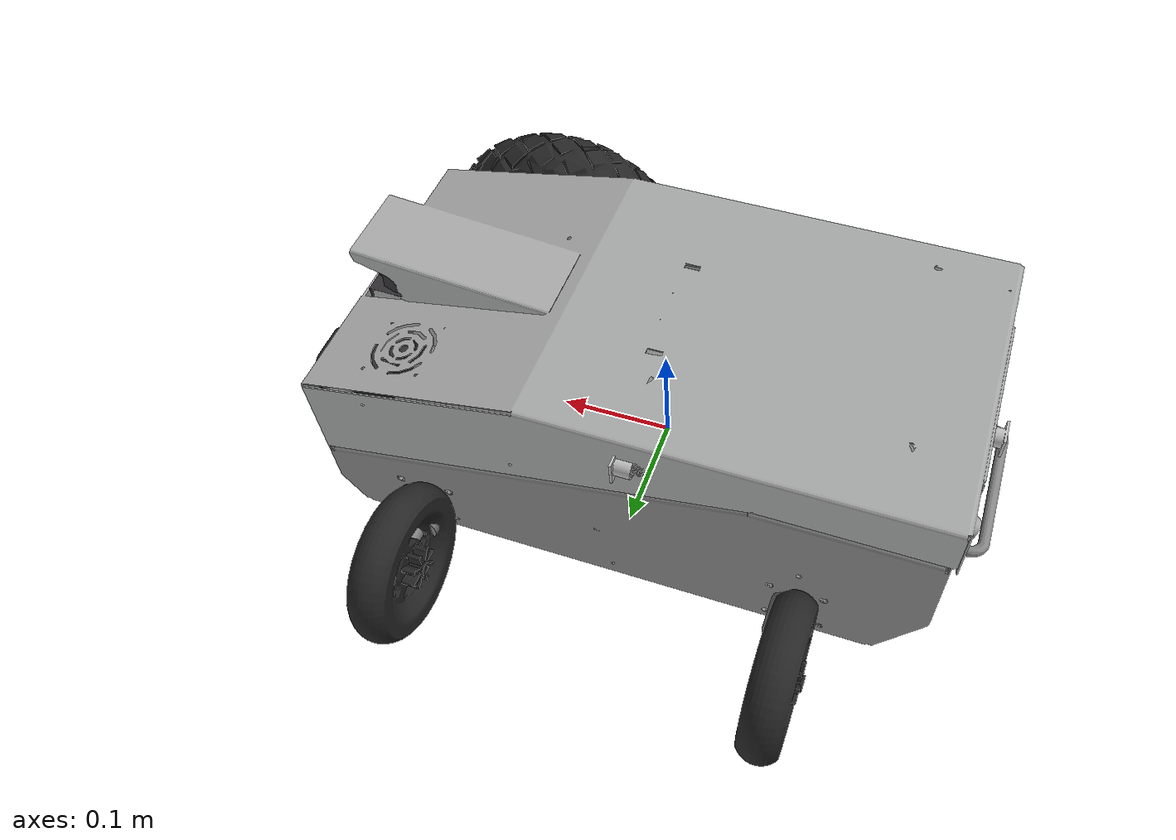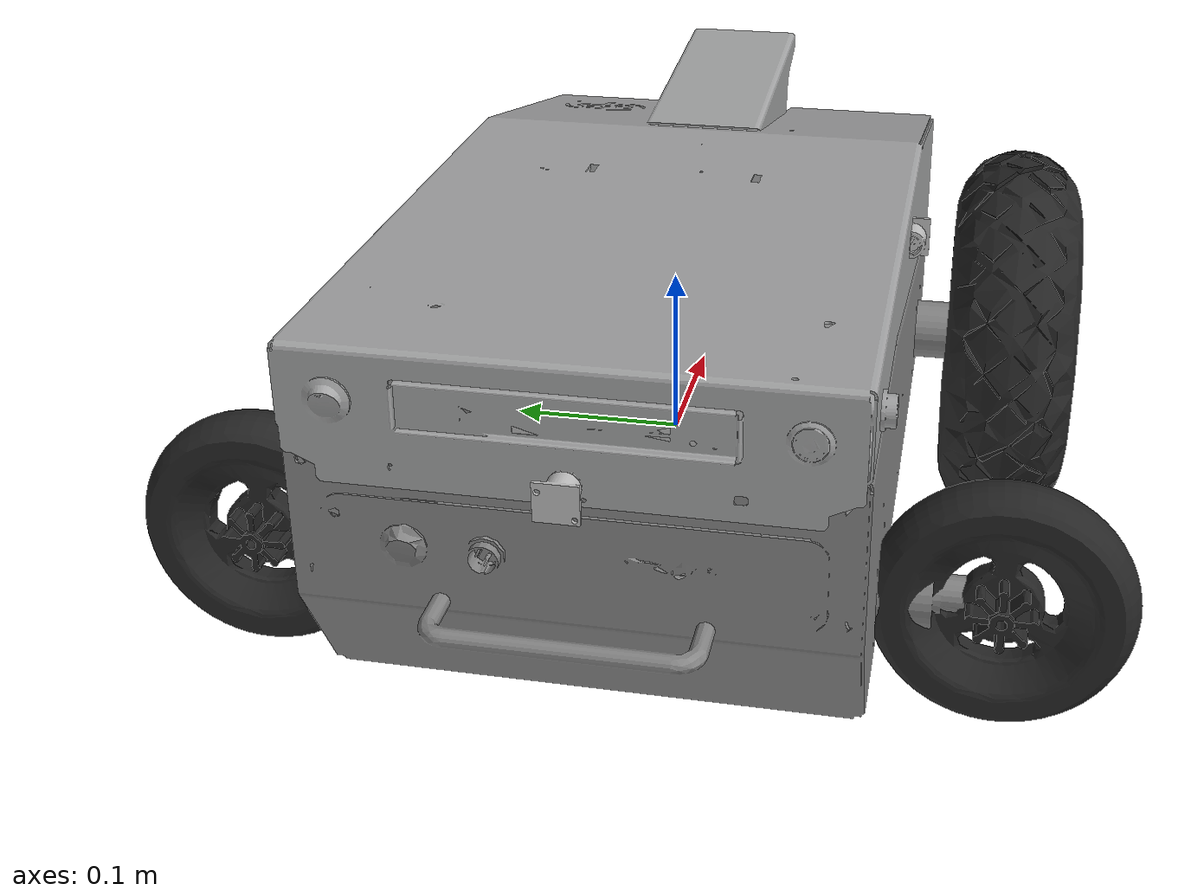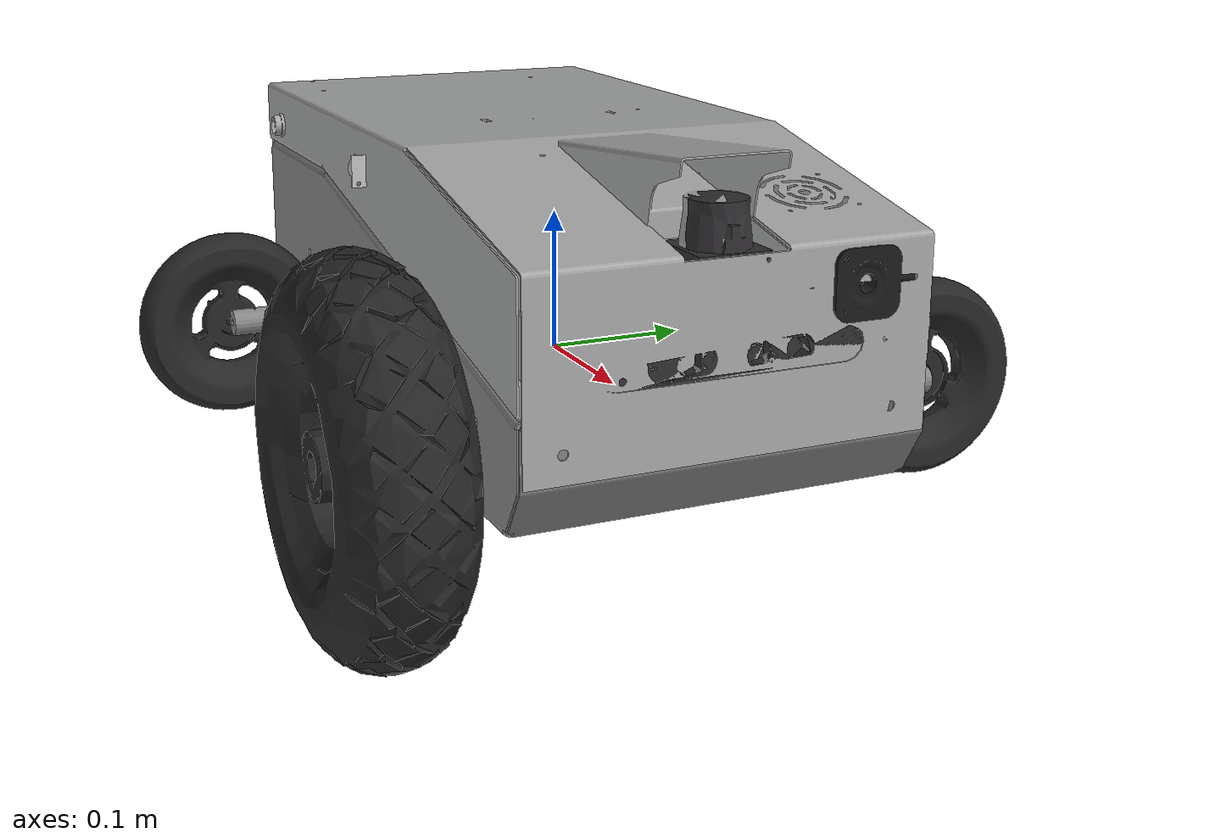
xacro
<?xml version="1.0"?>
<robot xmlns:xacro="http://www.ros.org/wiki/xacro" name="komodo">
	<xacro:property name="M_PI" value="3.1415926535897931" />

	<link name="asus_camera_link">
		<inertial>
			<origin rpy="0 0 0" xyz="-0.0187798361475048 -0.000287133366772307 -0.000201032384153296" />
			<mass value="0.150306955527936" />
			<inertia ixx="0.00039928218741962" ixy="-5.34870767194659E-07" ixz="-1.37242873517293E-08" iyy="2.36182089627434E-05" iyz="-8.67618422000016E-09" izz="0.000406064964123578" />
		</inertial>
		<visual>
			<origin rpy="0 0 0" xyz="0.00 0 0" />
			<geometry>
				<mesh filename="package://robotican_komodo/description/meshes/asus_camera_link.STL" />
			</geometry>
			<material name="">
				<color rgba="0.1792156862745098 0.1819607843137255 0.1933333333333333 1" />
			</material>
		</visual>
		<collision>
			<origin rpy="0 0 0" xyz="0 0 0" />
			<geometry>
				<mesh filename="package://robotican_komodo/description/meshes/asus_camera_link.STL" />
			</geometry>
		</collision>
	</link>

	  <joint name="asus_rgb_joint" type="fixed">
      <origin xyz="0 0.022 0" rpy="0 0 0"/>
      <parent link="asus_camera_link"/>
      <child link="asus_camera_rgb_frame" />
    </joint>

    <link name="asus_camera_rgb_frame">
      <inertial>
	<mass value="0.001" />
	<origin xyz="0 0 0" />
	<inertia ixx="0.0001" ixy="0.0" ixz="0.0"
	  iyy="0.0001" iyz="0.0"
	  izz="0.0001" />
	</inertial>
      </link>
      <joint name="asus_camera_rgb_optical_joint" type="fixed">
	<origin xyz="0 0 0" rpy="${-M_PI/2} 0 ${-M_PI/2}" />
	<parent link="asus_camera_rgb_frame" />
	<child link="asus_camera_rgb_optical_frame" />
      </joint>

      <link name="asus_camera_rgb_optical_frame">
	<inertial>
	  <mass value="0.001" />
	  <origin xyz="0 0 0" />
	  <inertia ixx="0.0001" ixy="0.0" ixz="0.0"
	    iyy="0.0001" iyz="0.0"
	    izz="0.0001" />
	  </inertial>
	</link>

	<joint name="asus_camera_depth_joint" type="fixed">
	  <origin xyz="0 0.049 0" rpy="0 0 0" />
	  <parent link="asus_camera_link" />
	  <child link="asus_camera_depth_frame" />
	</joint>

	<link name="asus_camera_depth_frame">
	  <inertial>
	    <mass value="0.001" />
	    <origin xyz="0 0 0" />
	    <inertia ixx="0.0001" ixy="0.0" ixz="0.0"
	      iyy="0.0001" iyz="0.0"
	      izz="0.0001" />
	    </inertial>
	  </link>

	  <joint name="asus_camera_depth_optical_joint" type="fixed">
	    <origin xyz="0 0 0" rpy="${-M_PI/2} 0 ${-M_PI/2}" />
	    <parent link="asus_camera_depth_frame" />
	    <child link="asus_camera_depth_optical_frame" />
	  </joint>
	  <link name="asus_camera_depth_optical_frame">
	    <inertial>
	      <mass value="0.001" />
	      <origin xyz="0 0 0" />
	      <inertia ixx="0.0001" ixy="0.0" ixz="0.0"
		iyy="0.0001" iyz="0.0"
		izz="0.0001" />
	      </inertial>
	    </link>

	<link name="front_camera_link">
		<inertial>
			<origin rpy="0 0 0" xyz="3.63553471578737E-06 0.000213443852909154 -0.00979905092954431" />
			<mass value="0.0346828331927876" />
			<inertia ixx="6.28790547336199E-06" ixy="-2.06834494924545E-09" ixz="1.17994816105049E-09" iyy="6.08020816375924E-06" iyz="3.61787794067701E-08" izz="9.95214453956241E-06" />
		</inertial>
		<visual>
			<origin rpy="-1.57079632649567 1.57079632649567 -1.57079632649567" xyz="0.005 0 0" />
			<geometry>
				<mesh filename="package://robotican_komodo/description/meshes/front_camera_link.STL" />
			</geometry>
			<material name="">
				<color rgba="0.1 0.1 0.1 1" />
			</material>
		</visual>
		<collision>
			<origin rpy="1.57 0 0" xyz="0 0 0" />
			<geometry>
				<mesh filename="package://robotican_komodo/description/meshes/front_camera_link.STL" />
			</geometry>
		</collision>
	</link>

	<link name="base_link">
		<inertial>
			<origin rpy="0 0 0" xyz="-0.0205330571995271 4.54409684683429E-05 0.00735986203300292" />
			<mass value="45.0894999160313" />
			<inertia ixx="0.723503030508731" ixy="-46.8485359152423E-05" ixz="-0.0875564429068847" iyy="1.38127064231828" iyz="11.9695110167269E-05" izz="1.94371448739423" />
		</inertial>
		<visual>
			<origin rpy="0 0 0" xyz="0 0 0" />
			<geometry>
				<mesh filename="package://robotican_komodo/description/meshes/base_link.STL" />
			</geometry>
			<material name="">
				<color rgba="0.52941176470588 0.52941176470588 0.52941176470588 1" />
			</material>
		</visual>
		<collision>
			<origin rpy="0 0 0" xyz="-0.065 0 0" />
			<geometry>
				<mesh filename="package://robotican_komodo/description/meshes/base_link.STL" />
			</geometry>
		</collision>
  	</link>

	<link name="fl_wheel_link">
		<inertial>
			<origin rpy="0 0 0" xyz="-0.00160662480262744 -2.59228543311729E-06 1.49951351856364E-05" />
			<mass value="3.83427523136739" />
			<inertia ixx="0.0296525525807749" ixy="1.51001277133356E-06" ixz="2.35766660656153E-06" iyy="0.0163749526386264" iyz="1.2254511654214E-06" izz="0.0163720506916083" />
		</inertial>
		<visual>
			<origin rpy="0 0 0" xyz="0 0 0" />
			<geometry>
				<mesh filename="package://robotican_komodo/description/meshes/fl_wheel_link.STL" />
			</geometry>
			<material name="">
				<color rgba="0.15 0.15 0.15 1" />
			</material>
		</visual>
		<collision>
			<origin rpy="0 ${M_PI/2} 0" xyz="0 0 0" />
			<geometry>
				<cylinder length="0.03" radius="0.1311" />
			</geometry>
		</collision>
  	</link>

	<link name="fr_wheel_link">
		<inertial>
			<origin rpy="0 0 0" xyz="-0.00160662478940524 -2.59227836232889E-06 1.49952129885679E-05" />
			<mass value="3.8342752339456" />
			<inertia ixx="0.0296525526023316" ixy="1.51001308635369E-06" ixz="2.3576732629264E-06" iyy="0.0163749526634419" iyz="1.22545882852199E-06" izz="0.0163720506902763" />
		</inertial>
		<visual>
			<origin rpy="0 0 0" xyz="0 0 0" />
			<geometry>
				<mesh filename="package://robotican_komodo/description/meshes/fr_wheel_link.STL" />
			</geometry>
			<material name="">
				<color rgba="0.15 0.15 0.15 1" />
			</material>
		</visual>
		<collision>
			<origin rpy="0 ${M_PI/2} 0" xyz="0 0 0" />
			<geometry>
				<cylinder length="0.03" radius="0.1311" />
			</geometry>
		</collision>
  	</link>

	<link name="rl_wheel_link">
		<inertial>
			<origin rpy="0 0 0" xyz="-0.00160662477936549 -2.59222765522371E-06 1.49952106412736E-05" />
			<mass value="3.83427523542708" />
			<inertia ixx="0.0296525526119397" ixy="1.5100179619978E-06" ixz="2.35767335983606E-06" iyy="0.0163749526769378" iyz="1.22544931791974E-06" izz="0.0163720506885898" />
		</inertial>
		<visual>
			<origin rpy="0 0 0" xyz="0 0 0" />
			<geometry>
				<mesh filename="package://robotican_komodo/description/meshes/rl_wheel_link.STL" />
			</geometry>
			<material name="">
				<color rgba="0.15 0.15 0.15 1" />
			</material>
		</visual>
		<collision>
			<origin rpy="0 ${M_PI/2} 0" xyz="0 0 0" />
			<geometry>
				<cylinder length="0.03" radius="0.1311" />
			</geometry>
		</collision>
  	</link>

	<link name="rr_wheel_link">
		<inertial>
			<origin rpy="0 0 0" xyz="-0.00160662476834383 -2.59238516814309E-06 1.49950507030127E-05" />
			<mass value="3.83427523968864" />
			<inertia ixx="0.0296525526652264" ixy="1.5100019082583E-06" ixz="2.35765651707649E-06" iyy="0.0163749526901628" iyz="1.22544631738128E-06" izz="0.0163720507270359" />
		</inertial>
		<visual>
			<origin rpy="0 0 0" xyz="0 0 0" />
			<geometry>
				<mesh filename="package://robotican_komodo/description/meshes/rr_wheel_link.STL" />
			</geometry>
			<material name="">
				<color rgba="0.15 0.15 0.15 1" />
			</material>
		</visual>
		<collision>
			<origin rpy="0 ${M_PI/2} 0" xyz="0 0 0" />
			<geometry>
				<cylinder length="0.03" radius="0.1311" />
			</geometry>
		</collision>
  	</link>

	<link name="laser_link">
		<inertial>
			<origin rpy="0 0 0" xyz="5.67786090348299E-05 -6.35639788811446E-05 -0.0320034700075499" />
			<mass value="0.133672626323353" />
			<inertia ixx="7.01753800311366E-05" ixy="-5.24162580339348E-08" ixz="1.6420597550453E-07" iyy="7.0476938858621E-05" iyz="1.92324838956078E-07" izz="4.61464878783427E-05" />
		</inertial>
		<visual>
			<origin rpy="0 0 ${M_PI}" xyz="0.003 0 0" />
			<geometry>
				<mesh filename="package://robotican_komodo/description/meshes/laser_link.STL" />
			</geometry>
			<material name="">
				<color rgba="0.192156862745098 0.1819607843137255 0.1933333333333333 1" />
			</material>
		</visual>
		<collision>
			<origin rpy="0 0 0" xyz="0 0 0" />
			<geometry>
				<mesh filename="package://robotican_komodo/description/meshes/laser_link.STL" />
			</geometry>
		</collision>
	</link>

	<link name="left_urf_link">
		<inertial>
			<origin rpy="0 0 0" xyz="-0.00942258060476561 1.68888278492922E-05 -0.000193183712129175" />
			<mass value="0.00277487854391404" />
			<inertia ixx="1.28314681514111E-07" ixy="-1.54585356342896E-10" ixz="3.11030599725484E-09" iyy="1.18940672500039E-07" iyz="4.35265830364889E-09" izz="1.28434121553121E-07" />
		</inertial>
		<visual>
			<origin rpy="0 0 0" xyz="0 0 0" />
			<geometry>
				<mesh filename="package://robotican_komodo/description/meshes/left_urf_link.STL" />
			</geometry>
			<material name="">
				<color rgba="0.752941176470588 0.752941176470588 0.752941176470588 1" />
			</material>
		</visual>
		<collision>
			<origin rpy="0 0 0" xyz="0 0 0" />
			<geometry>
				<mesh filename="package://robotican_komodo/description/meshes/left_urf_link.STL" />
			</geometry>
		</collision>
	</link>

	<link name="rear_urf_link">
		<inertial>
			<origin rpy="0 0 0" xyz="-0.00942258060476558 1.68888278491873E-05 -0.000193183712129189" />
			<mass value="0.0027748785439141" />
			<inertia ixx="1.28314681514116E-07" ixy="-1.54585356343498E-10" ixz="3.1103059972555E-09" iyy="1.18940672500041E-07" iyz="4.35265830364838E-09" izz="1.28434121553125E-07" />
		</inertial>
		<visual>
			<origin rpy="0 0 0" xyz="0 0 0" />
			<geometry>
				<mesh filename="package://robotican_komodo/description/meshes/rear_urf_link.STL" />
			</geometry>
			<material name="">
				<color rgba="0.752941176470588 0.752941176470588 0.752941176470588 1" />
			</material>
		</visual>
		<collision>
			<origin rpy="0 0 0" xyz="0 0 0" />
			<geometry>
				<mesh filename="package://robotican_komodo/description/meshes/rear_urf_link.STL" />
			</geometry>
		</collision>
	</link>

	<link name="right_urf_link">
		<inertial>
			<origin rpy="0 0 0" xyz="-0.00942258060476561 1.68888278493408E-05 -0.000193183712129202" />
			<mass value="0.00277487854391409" />
			<inertia ixx="1.28314681514115E-07" ixy="-1.54585356342962E-10" ixz="3.11030599725548E-09" iyy="1.18940672500041E-07" iyz="4.3526583036484E-09" izz="1.28434121553124E-07" />
		</inertial>
		<visual>
			<origin rpy="0 0 0" xyz="0 0 0" />
			<geometry>
				<mesh filename="package://robotican_komodo/description/meshes/right_urf_link.STL" />
			</geometry>
			<material name="">
				<color rgba="0.752941176470588 0.752941176470588 0.752941176470588 1" />
			</material>
		</visual>
		<collision>
			<origin rpy="0 0 0" xyz="0 0 0" />
			<geometry>
				<mesh filename="package://robotican_komodo/description/meshes/right_urf_link.STL" />
			</geometry>
		</collision>
	</link>

	<link name="sensors_unit_link">
		<inertial>
			<origin rpy="0 0 0" xyz="0.0414414719218708 -0.000373289194023478 0.0507806551833217" />
			<mass value="3.00493541386534" />
			<inertia ixx="0.0317419196615914" ixy="-0.000328957251382255" ixz="-0.0101477531293138" iyy="0.0944166881470797" iyz="2.04069229359132E-05" izz="0.116969738863327" />
		</inertial>
		<visual>
			<origin rpy="0 0 0" xyz="0 0 0" />
			<geometry>
				<mesh filename="package://robotican_komodo/description/meshes/sensors_unit_link.STL" />
			</geometry>
			<material name="">
				<color rgba="0.6509803921568627 0.6537254901960784 0.656078431372549 1" />
			</material>
		</visual>
		<collision>
			<origin rpy="0 0 0" xyz="0 0 0" />
			<geometry>
				<mesh filename="package://robotican_komodo/description/meshes/sensors_unit_link.STL" />
			</geometry>
		</collision>
	</link>

	<!--         END         -->

	<!-- Load all the joints -->

	<joint name="fr_wheel_joint" type="continuous">
    		<origin xyz="0.173999999999995 -0.2009 0" rpy="2.62229105359916E-15 6.9308460464278E-17 1.5707963267949" />
    		<parent link="base_link" />
    		<child link="fr_wheel_link" />
    		<axis xyz="1 0 0" />
  	</joint>

	<joint name="fl_wheel_joint" type="continuous">
    		<origin xyz="0.173999999999995 0.2009 0" rpy="-2.62229105359916E-15 6.93084604642783E-17 -1.5707963267949" />
    		<parent link="base_link" />
    		<child link="fl_wheel_link" />
    		<axis xyz="-1 0 0" />
  	</joint>

	<joint name="rr_wheel_joint" type="continuous">
    		<origin xyz="-0.156000000000005 -0.2009 0" rpy="2.62229105359916E-15 -1.59433090848306E-31 1.5707963267949" />
    		<parent link="base_link" />
    		<child link="rr_wheel_link" />
    		<axis xyz="1 0 0" />
  	</joint>

	<joint name="rl_wheel_joint" type="continuous">
    		<origin xyz="-0.156000000000005 0.2009 0" rpy="-2.62229105359916E-15 -5.57680208627196E-32 -1.5707963267949" />
    		<parent link="base_link" />
    		<child link="rl_wheel_link" />
    		<axis xyz="-1 0 0" />
  	</joint>

	<joint name="left_urf_joint" type="fixed">
    		<origin xyz="-0.0223133326154785 0.137250000000005 0.138508176066688" rpy="-2.73331335606168E-15 1.59433090848306E-31 1.5707963267949" />
    		<parent link="base_link" />
    		<child link="left_urf_link" />
    		<axis xyz="-1 0 0" />
  	</joint>

	<joint name="rear_urf_joint" type="fixed">
    		<origin xyz="-0.267499972183238 0 0.107999999999999" rpy="-6.16297582203915E-33 2.73331335606168E-15 3.14159265358979" />
    		<parent link="base_link" />
    		<child link="rear_urf_link" />
    		<axis xyz="-1 0 0" />
  	</joint>

	<joint name="right_urf_joint" type="fixed">
    		<origin xyz="-0.0223133326154785 -0.137249999999995 0.138508176066688" rpy="2.73331335606168E-15 -1.59433090848306E-31 -1.5707963267949" />
    		<parent link="base_link" />
    		<child link="right_urf_link" />
    		<axis xyz="-1 0 0" />
  	</joint>

	<joint name="front_camera_joint" type="fixed">
    		<origin xyz="0.262250027816762 0.0875000000000051 0.100000000000001" rpy="0 0 0" />
    		<parent link="base_link" />
    		<child link="front_camera_link" />
    		<axis xyz="0 0 1" />
  	</joint>

	<joint name="laser_joint" type="fixed">
    		<origin xyz="0.234263427816762 0 0.145827195177237" rpy="-6.93084604642783E-17 -2.62229105359916E-15 5.55111512312578E-17" />
    		<parent link="base_link" />
    		<child link="laser_link" />
    		<axis xyz="0 0 -1" />
  	</joint>

	<joint name="asus_camera_joint" type="fixed">
    		<origin xyz="0.262250027816762 0 0.0635000000000008" rpy="-6.93084604642783E-17 -2.62229105359916E-15 5.55111512312578E-17" />
    		<parent link="base_link" />
    		<child link="asus_camera_link" />
    		<axis xyz="-1 0 0" />
  	</joint>

	<joint name="sensors_unit_joint" type="fixed">
    		<origin xyz="-0.00199997218323841 0 0.0835000000000001" rpy="-1.59433090848306E-31 -2.62229105359916E-15 5.55111512312578E-17" />
    		<parent link="base_link" />
    		<child link="sensors_unit_link" />
    		<axis xyz="1 0 0" />
  	</joint>

	<!--         END         -->
</robot>
